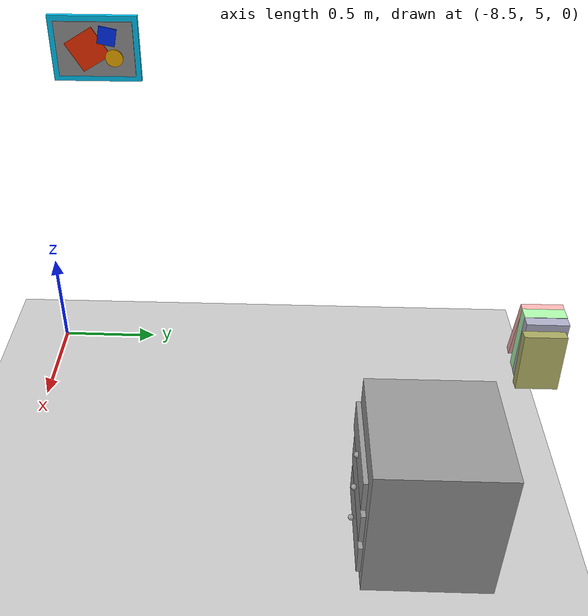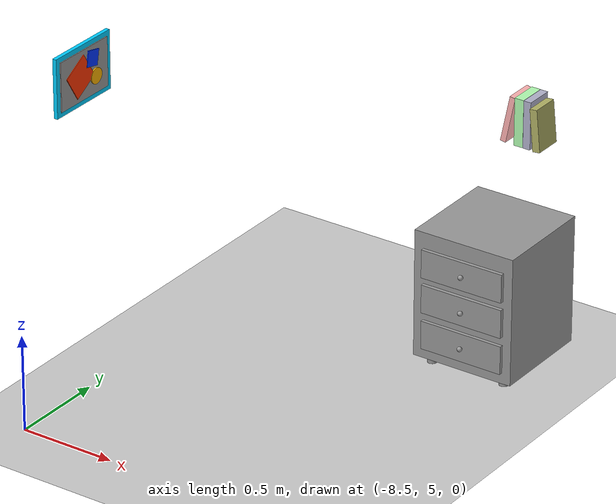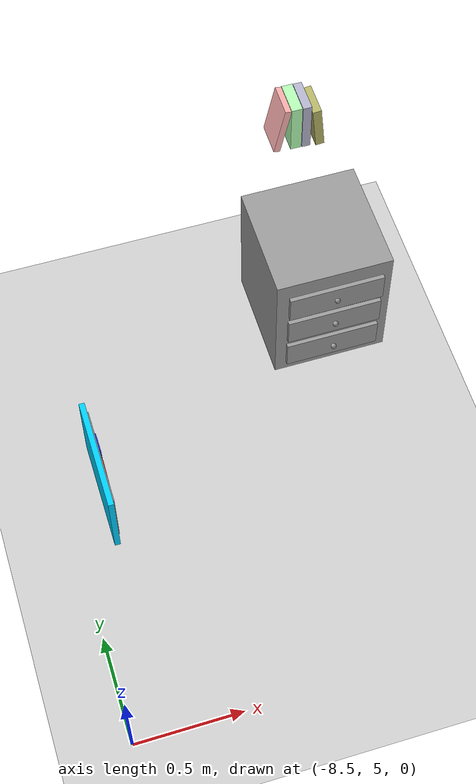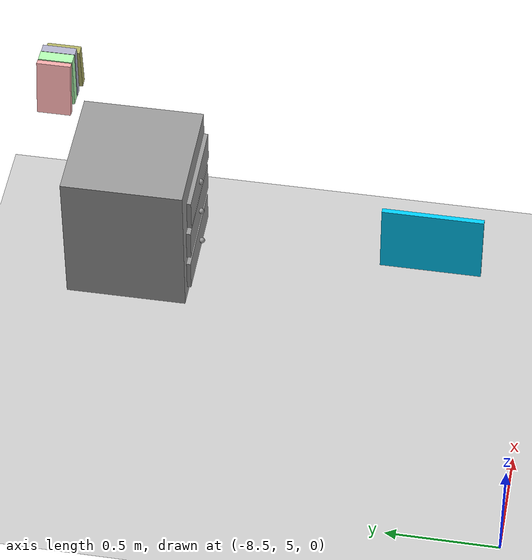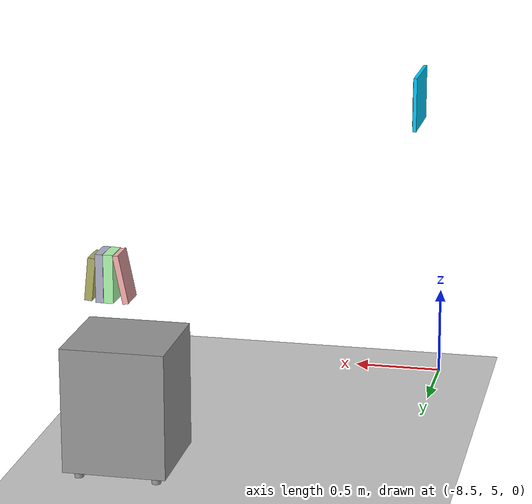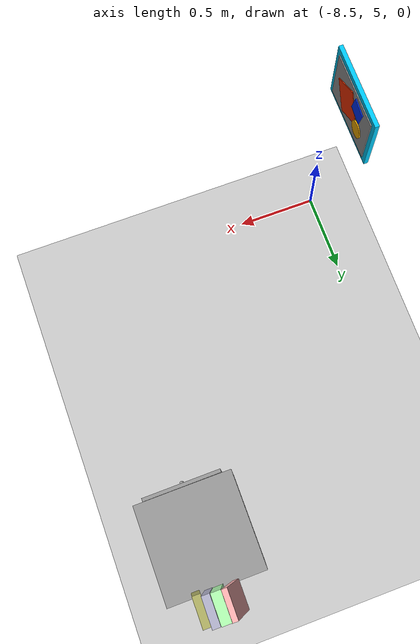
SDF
<sdf version="1.7">
 <world name="default">
  <model name="ground_plane">
   <static>1</static>
   <link name="link">
    <collision name="collision">
     <geometry><plane><normal>0 0 1</normal><size>100 100</size></plane></geometry>
     <surface>
      <contact><collide_bitmask>65535</collide_bitmask></contact>
      <friction><ode><mu>100</mu><mu2>50</mu2></ode></friction>
     </surface>
    </collision>
    <visual name="visual">
     <cast_shadows>0</cast_shadows>
     <geometry><plane><normal>0 0 1</normal><size>100 100</size></plane></geometry>
     <material>
      <script><uri>file://media/materials/scripts/gazebo.material</uri><name>Gazebo/Grey</name></script>
     </material>
    </visual>
   </link>
  </model>
  <model name="my_drawer_v2">
   <link name="link">
    <inertial>
     <mass>1</mass>
     <inertia>
      <ixx>0.166667</ixx>
      <ixy>0</ixy>
      <ixz>0</ixz>
      <iyy>0.166667</iyy>
      <iyz>0</iyz>
      <izz>0.166667</izz>
     </inertia>
    </inertial>
    <pose>0 0 0.116299 0 -0 0</pose>
    <visual name="visual">
     <geometry><box><size>0.55 0.55 0.675</size></box></geometry>
     <material>
      <script><name>Gazebo/Grey</name><uri>file://media/materials/scripts/gazebo.material</uri></script>
      <shader type="pixel"><normal_map>__default__</normal_map></shader>
      <ambient>0.9 0.9 0.9 1</ambient>
      <diffuse>0.9 0.9 0.9 1</diffuse>
      <specular>0.01 0.01 0.01 1</specular>
      <emissive>0 0 0 1</emissive>
     </material>
     <pose>0 0 0.27 0 -0 0</pose>
    </visual>
    <collision name="collision">
     <pose>0 0 0.27 0 -0 0</pose>
     <geometry><box><size>0.55 0.55 0.675</size></box></geometry>
     <surface>
      <friction>
       <ode><mu>1</mu><mu2>1</mu2><fdir1>0 0 0</fdir1><slip1>0</slip1><slip2>0</slip2></ode>
       <torsional>
        <coefficient>1</coefficient>
        <patch_radius>0</patch_radius>
        <surface_radius>0</surface_radius>
        <use_patch_radius>1</use_patch_radius>
        <ode><slip>0</slip></ode>
       </torsional>
      </friction>
      <bounce><restitution_coefficient>0</restitution_coefficient><threshold>1e+06</threshold></bounce>
      <contact>
       <collide_without_contact>0</collide_without_contact>
       <collide_without_contact_bitmask>1</collide_without_contact_bitmask>
       <collide_bitmask>1</collide_bitmask>
       <ode>
        <soft_cfm>0</soft_cfm>
        <soft_erp>0.2</soft_erp>
        <kp>1e+13</kp>
        <kd>1</kd>
        <max_vel>0.01</max_vel>
        <min_depth>0</min_depth>
       </ode>
       <bullet>
        <split_impulse>1</split_impulse>
        <split_impulse_penetration_threshold>-0.01</split_impulse_penetration_threshold>
        <soft_cfm>0</soft_cfm>
        <soft_erp>0.2</soft_erp>
        <kp>1e+13</kp>
        <kd>1</kd>
       </bullet>
      </contact>
     </surface>
    </collision>
   </link>
   <link name="link_0">
    <inertial>
     <mass>1</mass>
     <inertia><ixx>0.145833</ixx><ixy>0</ixy><ixz>0</ixz><iyy>0.145833</iyy><iyz>0</iyz><izz>0.125</izz></inertia>
    </inertial>
    <pose>0.2095 -0.203821 0.302524 0 -0 0</pose>
    <visual name="visual">
     <pose>0 0 -0.275 0 -0 0</pose>
     <geometry><cylinder><radius>0.025</radius><length>0.05</length></cylinder></geometry>
     <material>
      <lighting>1</lighting>
      <script><uri>file://media/materials/scripts/gazebo.material</uri><name>Gazebo/Grey</name></script>
      <shader type="pixel"><normal_map>__default__</normal_map></shader>
      <ambient>0.7 0.7 0.7 1</ambient>
      <diffuse>0.7 0.7 0.7 1</diffuse>
      <specular>0.01 0.01 0.01 1</specular>
      <emissive>0 0 0 1</emissive>
     </material>
    </visual>
    <collision name="collision">
     <pose>0 0 -0.275 0 -0 0</pose>
     <geometry><cylinder><radius>0.025</radius><length>0.05</length></cylinder></geometry>
     <surface>
      <friction>
       <ode><mu>1</mu><mu2>1</mu2><fdir1>0 0 0</fdir1><slip1>0</slip1><slip2>0</slip2></ode>
       <torsional>
        <coefficient>1</coefficient>
        <patch_radius>0</patch_radius>
        <surface_radius>0</surface_radius>
        <use_patch_radius>1</use_patch_radius>
        <ode><slip>0</slip></ode>
       </torsional>
      </friction>
      <bounce><restitution_coefficient>0</restitution_coefficient><threshold>1e+06</threshold></bounce>
      <contact>
       <collide_without_contact>0</collide_without_contact>
       <collide_without_contact_bitmask>1</collide_without_contact_bitmask>
       <collide_bitmask>1</collide_bitmask>
       <ode>
        <soft_cfm>0</soft_cfm>
        <soft_erp>0.2</soft_erp>
        <kp>1e+13</kp>
        <kd>1</kd>
        <max_vel>0.01</max_vel>
        <min_depth>0</min_depth>
       </ode>
       <bullet>
        <split_impulse>1</split_impulse>
        <split_impulse_penetration_threshold>-0.01</split_impulse_penetration_threshold>
        <soft_cfm>0</soft_cfm>
        <soft_erp>0.2</soft_erp>
        <kp>1e+13</kp>
        <kd>1</kd>
       </bullet>
      </contact>
     </surface>
    </collision>
   </link>
   <link name="link_0_0_clone">
    <inertial>
     <mass>1</mass>
     <inertia>
      <ixx>0.166667</ixx>
      <ixy>0</ixy>
      <ixz>0</ixz>
      <iyy>0.166667</iyy>
      <iyz>0</iyz>
      <izz>0.166667</izz>
     </inertia>
    </inertial>
    <pose>-0.003378 0.283932 0.180993 0 -0 0</pose>
    <visual name="visual">
     <geometry><box><size>0.45 0.02 0.15</size></box></geometry>
     <material>
      <lighting>1</lighting>
      <script><uri>file://media/materials/scripts/gazebo.material</uri><name>Gazebo/Grey</name></script>
      <shader type="pixel"><normal_map>__default__</normal_map></shader>
      <ambient>0.9 0.9 0.9 1</ambient>
      <diffuse>0.9 0.9 0.9 1</diffuse>
      <specular>0.01 0.01 0.01 1</specular>
      <emissive>0 0 0 1</emissive>
     </material>
    </visual>
    <collision name="collision">
     <geometry><box><size>0.45 0.02 0.15</size></box></geometry>
     <surface>
      <friction>
       <ode><mu>1</mu><mu2>1</mu2><fdir1>0 0 0</fdir1><slip1>0</slip1><slip2>0</slip2></ode>
       <torsional>
        <coefficient>1</coefficient>
        <patch_radius>0</patch_radius>
        <surface_radius>0</surface_radius>
        <use_patch_radius>1</use_patch_radius>
        <ode><slip>0</slip></ode>
       </torsional>
      </friction>
      <bounce><restitution_coefficient>0</restitution_coefficient><threshold>1e+06</threshold></bounce>
      <contact>
       <collide_without_contact>0</collide_without_contact>
       <collide_without_contact_bitmask>1</collide_without_contact_bitmask>
       <collide_bitmask>1</collide_bitmask>
       <ode>
        <soft_cfm>0</soft_cfm>
        <soft_erp>0.2</soft_erp>
        <kp>1e+13</kp>
        <kd>1</kd>
        <max_vel>0.01</max_vel>
        <min_depth>0</min_depth>
       </ode>
       <bullet>
        <split_impulse>1</split_impulse>
        <split_impulse_penetration_threshold>-0.01</split_impulse_penetration_threshold>
        <soft_cfm>0</soft_cfm>
        <soft_erp>0.2</soft_erp>
        <kp>1e+13</kp>
        <kd>1</kd>
       </bullet>
      </contact>
     </surface>
    </collision>
   </link>
   <link name="link_0_0_clone_clone">
    <inertial>
     <mass>1</mass>
     <inertia>
      <ixx>0.166667</ixx>
      <ixy>0</ixy>
      <ixz>0</ixz>
      <iyy>0.166667</iyy>
      <iyz>0</iyz>
      <izz>0.166667</izz>
     </inertia>
    </inertial>
    <pose>-0.004239 0.28732 0.377607 0 -0 0</pose>
    <visual name="visual">
     <geometry><box><size>0.45 0.02 0.15</size></box></geometry>
     <material>
      <lighting>1</lighting>
      <script><uri>file://media/materials/scripts/gazebo.material</uri><name>Gazebo/Grey</name></script>
      <shader type="pixel"><normal_map>__default__</normal_map></shader>
      <ambient>0.9 0.9 0.9 1</ambient>
      <diffuse>0.9 0.9 0.9 1</diffuse>
      <specular>0.01 0.01 0.01 1</specular>
      <emissive>0 0 0 1</emissive>
     </material>
    </visual>
    <collision name="collision">
     <geometry><box><size>0.45 0.02 0.15</size></box></geometry>
     <surface>
      <friction>
       <ode><mu>1</mu><mu2>1</mu2><fdir1>0 0 0</fdir1><slip1>0</slip1><slip2>0</slip2></ode>
       <torsional>
        <coefficient>1</coefficient>
        <patch_radius>0</patch_radius>
        <surface_radius>0</surface_radius>
        <use_patch_radius>1</use_patch_radius>
        <ode><slip>0</slip></ode>
       </torsional>
      </friction>
      <bounce><restitution_coefficient>0</restitution_coefficient><threshold>1e+06</threshold></bounce>
      <contact>
       <collide_without_contact>0</collide_without_contact>
       <collide_without_contact_bitmask>1</collide_without_contact_bitmask>
       <collide_bitmask>1</collide_bitmask>
       <ode>
        <soft_cfm>0</soft_cfm>
        <soft_erp>0.2</soft_erp>
        <kp>1e+13</kp>
        <kd>1</kd>
        <max_vel>0.01</max_vel>
        <min_depth>0</min_depth>
       </ode>
       <bullet>
        <split_impulse>1</split_impulse>
        <split_impulse_penetration_threshold>-0.01</split_impulse_penetration_threshold>
        <soft_cfm>0</soft_cfm>
        <soft_erp>0.2</soft_erp>
        <kp>1e+13</kp>
        <kd>1</kd>
       </bullet>
      </contact>
     </surface>
    </collision>
   </link>
   <link name="link_0_0_clone_clone_clone">
    <inertial>
     <mass>1</mass>
     <inertia>
      <ixx>0.166667</ixx>
      <ixy>0</ixy>
      <ixz>0</ixz>
      <iyy>0.166667</iyy>
      <iyz>0</iyz>
      <izz>0.166667</izz>
     </inertia>
    </inertial>
    <pose>-0.005805 0.292346 0.569265 0 0 -3.13872</pose>
    <visual name="visual">
     <geometry><box><size>0.45 0.02 0.15</size></box></geometry>
     <material>
      <lighting>1</lighting>
      <script><uri>file://media/materials/scripts/gazebo.material</uri><name>Gazebo/Grey</name></script>
      <shader type="pixel"><normal_map>__default__</normal_map></shader>
      <ambient>0.9 0.9 0.9 1</ambient>
      <diffuse>0.9 0.9 0.9 1</diffuse>
      <specular>0.01 0.01 0.01 1</specular>
      <emissive>0 0 0 1</emissive>
     </material>
    </visual>
    <collision name="collision">
     <geometry><box><size>0.45 0.02 0.15</size></box></geometry>
     <surface>
      <friction>
       <ode><mu>1</mu><mu2>1</mu2><fdir1>0 0 0</fdir1><slip1>0</slip1><slip2>0</slip2></ode>
       <torsional>
        <coefficient>1</coefficient>
        <patch_radius>0</patch_radius>
        <surface_radius>0</surface_radius>
        <use_patch_radius>1</use_patch_radius>
        <ode><slip>0</slip></ode>
       </torsional>
      </friction>
      <bounce><restitution_coefficient>0</restitution_coefficient><threshold>1e+06</threshold></bounce>
      <contact>
       <collide_without_contact>0</collide_without_contact>
       <collide_without_contact_bitmask>1</collide_without_contact_bitmask>
       <collide_bitmask>1</collide_bitmask>
       <ode>
        <soft_cfm>0</soft_cfm>
        <soft_erp>0.2</soft_erp>
        <kp>1e+13</kp>
        <kd>1</kd>
        <max_vel>0.01</max_vel>
        <min_depth>0</min_depth>
       </ode>
       <bullet>
        <split_impulse>1</split_impulse>
        <split_impulse_penetration_threshold>-0.01</split_impulse_penetration_threshold>
        <soft_cfm>0</soft_cfm>
        <soft_erp>0.2</soft_erp>
        <kp>1e+13</kp>
        <kd>1</kd>
       </bullet>
      </contact>
     </surface>
    </collision>
   </link>
   <link name="link_0_clone">
    <inertial>
     <mass>1</mass>
     <inertia><ixx>0.145833</ixx><ixy>0</ixy><ixz>0</ixz><iyy>0.145833</iyy><iyz>0</iyz><izz>0.125</izz></inertia>
    </inertial>
    <pose>-0.20661 -0.201979 0.303229 0 -0 0</pose>
    <visual name="visual">
     <pose>0 0 -0.275 0 -0 0</pose>
     <geometry><cylinder><radius>0.025</radius><length>0.05</length></cylinder></geometry>
     <material>
      <lighting>1</lighting>
      <script><uri>file://media/materials/scripts/gazebo.material</uri><name>Gazebo/Grey</name></script>
      <shader type="pixel"><normal_map>__default__</normal_map></shader>
      <ambient>0.8 0.8 0.8 1</ambient>
      <diffuse>0.8 0.8 0.8 1</diffuse>
      <specular>0.01 0.01 0.01 1</specular>
      <emissive>0 0 0 1</emissive>
     </material>
    </visual>
    <collision name="collision">
     <pose>0 0 -0.275 0 -0 0</pose>
     <geometry><cylinder><radius>0.025</radius><length>0.05</length></cylinder></geometry>
     <surface>
      <friction>
       <ode><mu>1</mu><mu2>1</mu2><fdir1>0 0 0</fdir1><slip1>0</slip1><slip2>0</slip2></ode>
       <torsional>
        <coefficient>1</coefficient>
        <patch_radius>0</patch_radius>
        <surface_radius>0</surface_radius>
        <use_patch_radius>1</use_patch_radius>
        <ode><slip>0</slip></ode>
       </torsional>
      </friction>
      <bounce><restitution_coefficient>0</restitution_coefficient><threshold>1e+06</threshold></bounce>
      <contact>
       <collide_without_contact>0</collide_without_contact>
       <collide_without_contact_bitmask>1</collide_without_contact_bitmask>
       <collide_bitmask>1</collide_bitmask>
       <ode>
        <soft_cfm>0</soft_cfm>
        <soft_erp>0.2</soft_erp>
        <kp>1e+13</kp>
        <kd>1</kd>
        <max_vel>0.01</max_vel>
        <min_depth>0</min_depth>
       </ode>
       <bullet>
        <split_impulse>1</split_impulse>
        <split_impulse_penetration_threshold>-0.01</split_impulse_penetration_threshold>
        <soft_cfm>0</soft_cfm>
        <soft_erp>0.2</soft_erp>
        <kp>1e+13</kp>
        <kd>1</kd>
       </bullet>
      </contact>
     </surface>
    </collision>
   </link>
   <link name="link_0_clone_0">
    <inertial>
     <mass>1</mass>
     <inertia><ixx>0.145833</ixx><ixy>0</ixy><ixz>0</ixz><iyy>0.145833</iyy><iyz>0</iyz><izz>0.125</izz></inertia>
    </inertial>
    <pose>0.205481 0.211972 0.302524 0 -0 0</pose>
    <visual name="visual">
     <pose>0 0 -0.275 0 -0 0</pose>
     <geometry><cylinder><radius>0.025</radius><length>0.05</length></cylinder></geometry>
     <material>
      <lighting>1</lighting>
      <script><uri>file://media/materials/scripts/gazebo.material</uri><name>Gazebo/Grey</name></script>
      <shader type="pixel"><normal_map>__default__</normal_map></shader>
      <ambient>0.7 0.7 0.7 1</ambient>
      <diffuse>0.7 0.7 0.7 1</diffuse>
      <specular>0.01 0.01 0.01 1</specular>
      <emissive>0 0 0 1</emissive>
     </material>
    </visual>
    <collision name="collision">
     <pose>0 0 -0.275 0 -0 0</pose>
     <geometry><cylinder><radius>0.025</radius><length>0.05</length></cylinder></geometry>
     <surface>
      <friction>
       <ode><mu>1</mu><mu2>1</mu2><fdir1>0 0 0</fdir1><slip1>0</slip1><slip2>0</slip2></ode>
       <torsional>
        <coefficient>1</coefficient>
        <patch_radius>0</patch_radius>
        <surface_radius>0</surface_radius>
        <use_patch_radius>1</use_patch_radius>
        <ode><slip>0</slip></ode>
       </torsional>
      </friction>
      <bounce><restitution_coefficient>0</restitution_coefficient><threshold>1e+06</threshold></bounce>
      <contact>
       <collide_without_contact>0</collide_without_contact>
       <collide_without_contact_bitmask>1</collide_without_contact_bitmask>
       <collide_bitmask>1</collide_bitmask>
       <ode>
        <soft_cfm>0</soft_cfm>
        <soft_erp>0.2</soft_erp>
        <kp>1e+13</kp>
        <kd>1</kd>
        <max_vel>0.01</max_vel>
        <min_depth>0</min_depth>
       </ode>
       <bullet>
        <split_impulse>1</split_impulse>
        <split_impulse_penetration_threshold>-0.01</split_impulse_penetration_threshold>
        <soft_cfm>0</soft_cfm>
        <soft_erp>0.2</soft_erp>
        <kp>1e+13</kp>
        <kd>1</kd>
       </bullet>
      </contact>
     </surface>
    </collision>
   </link>
   <link name="link_0_clone_0_clone">
    <inertial>
     <mass>1</mass>
     <inertia><ixx>0.145833</ixx><ixy>0</ixy><ixz>0</ixz><iyy>0.145833</iyy><iyz>0</iyz><izz>0.125</izz></inertia>
    </inertial>
    <pose>-0.197514 0.204937 0.302524 0 -0 0</pose>
    <visual name="visual">
     <pose>0 0 -0.275 0 -0 0</pose>
     <geometry><cylinder><radius>0.025</radius><length>0.05</length></cylinder></geometry>
     <material>
      <lighting>1</lighting>
      <script><uri>file://media/materials/scripts/gazebo.material</uri><name>Gazebo/Grey</name></script>
      <shader type="pixel"><normal_map>__default__</normal_map></shader>
      <ambient>0.7 0.7 0.7 1</ambient>
      <diffuse>0.7 0.7 0.7 1</diffuse>
      <specular>0.01 0.01 0.01 1</specular>
      <emissive>0 0 0 1</emissive>
     </material>
    </visual>
    <collision name="collision">
     <pose>0 0 -0.275 0 -0 0</pose>
     <geometry><cylinder><radius>0.025</radius><length>0.05</length></cylinder></geometry>
     <surface>
      <friction>
       <ode><mu>1</mu><mu2>1</mu2><fdir1>0 0 0</fdir1><slip1>0</slip1><slip2>0</slip2></ode>
       <torsional>
        <coefficient>1</coefficient>
        <patch_radius>0</patch_radius>
        <surface_radius>0</surface_radius>
        <use_patch_radius>1</use_patch_radius>
        <ode><slip>0</slip></ode>
       </torsional>
      </friction>
      <bounce><restitution_coefficient>0</restitution_coefficient><threshold>1e+06</threshold></bounce>
      <contact>
       <collide_without_contact>0</collide_without_contact>
       <collide_without_contact_bitmask>1</collide_without_contact_bitmask>
       <collide_bitmask>1</collide_bitmask>
       <ode>
        <soft_cfm>0</soft_cfm>
        <soft_erp>0.2</soft_erp>
        <kp>1e+13</kp>
        <kd>1</kd>
        <max_vel>0.01</max_vel>
        <min_depth>0</min_depth>
       </ode>
       <bullet>
        <split_impulse>1</split_impulse>
        <split_impulse_penetration_threshold>-0.01</split_impulse_penetration_threshold>
        <soft_cfm>0</soft_cfm>
        <soft_erp>0.2</soft_erp>
        <kp>1e+13</kp>
        <kd>1</kd>
       </bullet>
      </contact>
     </surface>
    </collision>
   </link>
   <link name="link_1">
    <inertial>
     <mass>1</mass>
     <inertia><ixx>0.1</ixx><ixy>0</ixy><ixz>0</ixz><iyy>0.1</iyy><iyz>0</iyz><izz>0.1</izz></inertia>
    </inertial>
    <pose>-0.007427 0.306598 0.372378 0 -0 0</pose>
    <visual name="visual">
     <geometry><sphere><radius>0.013</radius></sphere></geometry>
     <material>
      <lighting>1</lighting>
      <script><uri>file://media/materials/scripts/gazebo.material</uri><name>Gazebo/Grey</name></script>
      <shader type="pixel"><normal_map>__default__</normal_map></shader>
      <ambient>0.2 0.2 0.2 1</ambient>
      <diffuse>0.3 0.3 0.3 1</diffuse>
      <specular>0.01 0.01 0.01 1</specular>
      <emissive>0 0 0 1</emissive>
     </material>
    </visual>
    <collision name="collision">
     <geometry><sphere><radius>0.013</radius></sphere></geometry>
     <surface>
      <friction>
       <ode><mu>1</mu><mu2>1</mu2><fdir1>0 0 0</fdir1><slip1>0</slip1><slip2>0</slip2></ode>
       <torsional>
        <coefficient>1</coefficient>
        <patch_radius>0</patch_radius>
        <surface_radius>0</surface_radius>
        <use_patch_radius>1</use_patch_radius>
        <ode><slip>0</slip></ode>
       </torsional>
      </friction>
      <bounce><restitution_coefficient>0</restitution_coefficient><threshold>1e+06</threshold></bounce>
      <contact>
       <collide_without_contact>0</collide_without_contact>
       <collide_without_contact_bitmask>1</collide_without_contact_bitmask>
       <collide_bitmask>1</collide_bitmask>
       <ode>
        <soft_cfm>0</soft_cfm>
        <soft_erp>0.2</soft_erp>
        <kp>1e+13</kp>
        <kd>1</kd>
        <max_vel>0.01</max_vel>
        <min_depth>0</min_depth>
       </ode>
       <bullet>
        <split_impulse>1</split_impulse>
        <split_impulse_penetration_threshold>-0.01</split_impulse_penetration_threshold>
        <soft_cfm>0</soft_cfm>
        <soft_erp>0.2</soft_erp>
        <kp>1e+13</kp>
        <kd>1</kd>
       </bullet>
      </contact>
     </surface>
    </collision>
   </link>
   <link name="link_1_clone">
    <inertial>
     <mass>1</mass>
     <inertia><ixx>0.1</ixx><ixy>0</ixy><ixz>0</ixz><iyy>0.1</iyy><iyz>0</iyz><izz>0.1</izz></inertia>
    </inertial>
    <pose>-0.007411 0.306159 0.179254 0 -0 0</pose>
    <visual name="visual">
     <geometry><sphere><radius>0.013</radius></sphere></geometry>
     <material>
      <lighting>1</lighting>
      <script><uri>file://media/materials/scripts/gazebo.material</uri><name>Gazebo/Grey</name></script>
      <shader type="pixel"><normal_map>__default__</normal_map></shader>
      <ambient>0.2 0.2 0.2 1</ambient>
      <diffuse>0.3 0.3 0.3 1</diffuse>
      <specular>0.01 0.01 0.01 1</specular>
      <emissive>0 0 0 1</emissive>
     </material>
    </visual>
    <collision name="collision">
     <geometry><sphere><radius>0.013</radius></sphere></geometry>
     <surface>
      <friction>
       <ode><mu>1</mu><mu2>1</mu2><fdir1>0 0 0</fdir1><slip1>0</slip1><slip2>0</slip2></ode>
       <torsional>
        <coefficient>1</coefficient>
        <patch_radius>0</patch_radius>
        <surface_radius>0</surface_radius>
        <use_patch_radius>1</use_patch_radius>
        <ode><slip>0</slip></ode>
       </torsional>
      </friction>
      <bounce><restitution_coefficient>0</restitution_coefficient><threshold>1e+06</threshold></bounce>
      <contact>
       <collide_without_contact>0</collide_without_contact>
       <collide_without_contact_bitmask>1</collide_without_contact_bitmask>
       <collide_bitmask>1</collide_bitmask>
       <ode>
        <soft_cfm>0</soft_cfm>
        <soft_erp>0.2</soft_erp>
        <kp>1e+13</kp>
        <kd>1</kd>
        <max_vel>0.01</max_vel>
        <min_depth>0</min_depth>
       </ode>
       <bullet>
        <split_impulse>1</split_impulse>
        <split_impulse_penetration_threshold>-0.01</split_impulse_penetration_threshold>
        <soft_cfm>0</soft_cfm>
        <soft_erp>0.2</soft_erp>
        <kp>1e+13</kp>
        <kd>1</kd>
       </bullet>
      </contact>
     </surface>
    </collision>
   </link>
   <link name="link_1_clone_clone">
    <inertial>
     <mass>1</mass>
     <inertia><ixx>0.1</ixx><ixy>0</ixy><ixz>0</ixz><iyy>0.1</iyy><iyz>0</iyz><izz>0.1</izz></inertia>
    </inertial>
    <pose>-0.006412 0.30676 0.563852 0 0 -3.13872</pose>
    <visual name="visual">
     <geometry><sphere><radius>0.013</radius></sphere></geometry>
     <material>
      <lighting>1</lighting>
      <script><uri>file://media/materials/scripts/gazebo.material</uri><name>Gazebo/Grey</name></script>
      <shader type="pixel"><normal_map>__default__</normal_map></shader>
      <ambient>0.2 0.2 0.2 1</ambient>
      <diffuse>0.3 0.3 0.3 1</diffuse>
      <specular>0.01 0.01 0.01 1</specular>
      <emissive>0 0 0 1</emissive>
     </material>
    </visual>
    <collision name="collision">
     <geometry><sphere><radius>0.013</radius></sphere></geometry>
     <surface>
      <friction>
       <ode><mu>1</mu><mu2>1</mu2><fdir1>0 0 0</fdir1><slip1>0</slip1><slip2>0</slip2></ode>
       <torsional>
        <coefficient>1</coefficient>
        <patch_radius>0</patch_radius>
        <surface_radius>0</surface_radius>
        <use_patch_radius>1</use_patch_radius>
        <ode><slip>0</slip></ode>
       </torsional>
      </friction>
      <bounce><restitution_coefficient>0</restitution_coefficient><threshold>1e+06</threshold></bounce>
      <contact>
       <collide_without_contact>0</collide_without_contact>
       <collide_without_contact_bitmask>1</collide_without_contact_bitmask>
       <collide_bitmask>1</collide_bitmask>
       <ode>
        <soft_cfm>0</soft_cfm>
        <soft_erp>0.2</soft_erp>
        <kp>1e+13</kp>
        <kd>1</kd>
        <max_vel>0.01</max_vel>
        <min_depth>0</min_depth>
       </ode>
       <bullet>
        <split_impulse>1</split_impulse>
        <split_impulse_penetration_threshold>-0.01</split_impulse_penetration_threshold>
        <soft_cfm>0</soft_cfm>
        <soft_erp>0.2</soft_erp>
        <kp>1e+13</kp>
        <kd>1</kd>
       </bullet>
      </contact>
     </surface>
    </collision>
   </link>
   <static>1</static>
   <pose>-7.0932 6.85181 0 0 0 -3.13883</pose>
  </model>
  <model name="my_frame">
   <link name="link">
    <inertial>
     <mass>1</mass>
     <inertia>
      <ixx>0.166667</ixx>
      <ixy>0</ixy>
      <ixz>0</ixz>
      <iyy>0.166667</iyy>
      <iyz>0</iyz>
      <izz>0.166667</izz>
     </inertia>
    </inertial>
    <gravity>0</gravity>
    <visual name="visual">
     <geometry><box><size>0.02 0.4 0.3</size></box></geometry>
     <material>
      <script><name>Gazebo/Grey</name><uri>file://media/materials/scripts/gazebo.material</uri></script>
      <shader type="pixel"><normal_map>__default__</normal_map></shader>
      <ambient>0 0.81 1 1</ambient>
      <diffuse>0.7 0.7 0.7 1</diffuse>
      <specular>0.01 0.01 0.01 1</specular>
      <emissive>0 0 0 1</emissive>
     </material>
    </visual>
    <collision name="collision">
     <geometry><box><size>0.02 0.4 0.3</size></box></geometry>
     <surface>
      <friction>
       <ode><mu>1</mu><mu2>1</mu2><fdir1>0 0 0</fdir1><slip1>0</slip1><slip2>0</slip2></ode>
       <torsional>
        <coefficient>1</coefficient>
        <patch_radius>0</patch_radius>
        <surface_radius>0</surface_radius>
        <use_patch_radius>1</use_patch_radius>
        <ode><slip>0</slip></ode>
       </torsional>
      </friction>
      <bounce><restitution_coefficient>0</restitution_coefficient><threshold>1e+06</threshold></bounce>
      <contact>
       <collide_without_contact>0</collide_without_contact>
       <collide_without_contact_bitmask>1</collide_without_contact_bitmask>
       <collide_bitmask>1</collide_bitmask>
       <ode>
        <soft_cfm>0</soft_cfm>
        <soft_erp>0.2</soft_erp>
        <kp>1e+13</kp>
        <kd>1</kd>
        <max_vel>0.01</max_vel>
        <min_depth>0</min_depth>
       </ode>
       <bullet>
        <split_impulse>1</split_impulse>
        <split_impulse_penetration_threshold>-0.01</split_impulse_penetration_threshold>
        <soft_cfm>0</soft_cfm>
        <soft_erp>0.2</soft_erp>
        <kp>1e+13</kp>
        <kd>1</kd>
       </bullet>
      </contact>
     </surface>
    </collision>
   </link>
   <link name="link_2">
    <inertial>
     <mass>1</mass>
     <inertia><ixx>0.145833</ixx><ixy>0</ixy><ixz>0</ixz><iyy>0.145833</iyy><iyz>0</iyz><izz>0.125</izz></inertia>
    </inertial>
    <pose>0.015889 0.084711 -0.037956 0 -0 0</pose>
    <gravity>0</gravity>
    <visual name="visual">
     <pose>0 0 0 0 1.5707 0</pose>
     <geometry><cylinder><radius>0.04</radius><length>0.01</length></cylinder></geometry>
     <material>
      <lighting>1</lighting>
      <script><uri>file://media/materials/scripts/gazebo.material</uri><name>Gazebo/Grey</name></script>
      <shader type="pixel"><normal_map>__default__</normal_map></shader>
      <ambient>0.99 0.7 0 1</ambient>
      <diffuse>0.7 0.7 0.7 1</diffuse>
      <specular>0.01 0.01 0.01 1</specular>
      <emissive>0 0 0 1</emissive>
     </material>
    </visual>
    <collision name="collision">
     <pose>0 0 0 0 1.5707 0</pose>
     <geometry><cylinder><radius>0.04</radius><length>0.01</length></cylinder></geometry>
     <surface>
      <friction>
       <ode><mu>1</mu><mu2>1</mu2><fdir1>0 0 0</fdir1><slip1>0</slip1><slip2>0</slip2></ode>
       <torsional>
        <coefficient>1</coefficient>
        <patch_radius>0</patch_radius>
        <surface_radius>0</surface_radius>
        <use_patch_radius>1</use_patch_radius>
        <ode><slip>0</slip></ode>
       </torsional>
      </friction>
      <bounce><restitution_coefficient>0</restitution_coefficient><threshold>1e+06</threshold></bounce>
      <contact>
       <collide_without_contact>0</collide_without_contact>
       <collide_without_contact_bitmask>1</collide_without_contact_bitmask>
       <collide_bitmask>1</collide_bitmask>
       <ode>
        <soft_cfm>0</soft_cfm>
        <soft_erp>0.2</soft_erp>
        <kp>1e+13</kp>
        <kd>1</kd>
        <max_vel>0.01</max_vel>
        <min_depth>0</min_depth>
       </ode>
       <bullet>
        <split_impulse>1</split_impulse>
        <split_impulse_penetration_threshold>-0.01</split_impulse_penetration_threshold>
        <soft_cfm>0</soft_cfm>
        <soft_erp>0.2</soft_erp>
        <kp>1e+13</kp>
        <kd>1</kd>
       </bullet>
      </contact>
     </surface>
    </collision>
   </link>
   <link name="link_3">
    <inertial>
     <mass>1</mass>
     <inertia>
      <ixx>0.166667</ixx>
      <ixy>0</ixy>
      <ixz>0</ixz>
      <iyy>0.166667</iyy>
      <iyz>0</iyz>
      <izz>0.166667</izz>
     </inertia>
    </inertial>
    <pose>0.013898 -0.032005 0 0 -0 0</pose>
    <gravity>0</gravity>
    <visual name="visual">
     <pose>0 0 0 0.54 -0 0</pose>
     <geometry><box><size>0.01 0.15 0.15</size></box></geometry>
     <material>
      <lighting>1</lighting>
      <script><uri>file://media/materials/scripts/gazebo.material</uri><name>Gazebo/Grey</name></script>
      <shader type="pixel"><normal_map>__default__</normal_map></shader>
      <ambient>1 0.2 0 1</ambient>
      <diffuse>0.7 0.7 0.7 1</diffuse>
      <specular>0.01 0.01 0.01 1</specular>
      <emissive>0 0 0 1</emissive>
     </material>
    </visual>
    <collision name="collision">
     <pose>0 0 0 0.54 -0 0</pose>
     <geometry><box><size>0.01 0.15 0.15</size></box></geometry>
     <surface>
      <friction>
       <ode><mu>1</mu><mu2>1</mu2><fdir1>0 0 0</fdir1><slip1>0</slip1><slip2>0</slip2></ode>
       <torsional>
        <coefficient>1</coefficient>
        <patch_radius>0</patch_radius>
        <surface_radius>0</surface_radius>
        <use_patch_radius>1</use_patch_radius>
        <ode><slip>0</slip></ode>
       </torsional>
      </friction>
      <bounce><restitution_coefficient>0</restitution_coefficient><threshold>1e+06</threshold></bounce>
      <contact>
       <collide_without_contact>0</collide_without_contact>
       <collide_without_contact_bitmask>1</collide_without_contact_bitmask>
       <collide_bitmask>1</collide_bitmask>
       <ode>
        <soft_cfm>0</soft_cfm>
        <soft_erp>0.2</soft_erp>
        <kp>1e+13</kp>
        <kd>1</kd>
        <max_vel>0.01</max_vel>
        <min_depth>0</min_depth>
       </ode>
       <bullet>
        <split_impulse>1</split_impulse>
        <split_impulse_penetration_threshold>-0.01</split_impulse_penetration_threshold>
        <soft_cfm>0</soft_cfm>
        <soft_erp>0.2</soft_erp>
        <kp>1e+13</kp>
        <kd>1</kd>
       </bullet>
      </contact>
     </surface>
    </collision>
   </link>
   <link name="link_3_clone">
    <inertial>
     <mass>1</mass>
     <inertia>
      <ixx>0.166667</ixx>
      <ixy>0</ixy>
      <ixz>0</ixz>
      <iyy>0.166667</iyy>
      <iyz>0</iyz>
      <izz>0.166667</izz>
     </inertia>
    </inertial>
    <pose>0.015334 0.059714 0.061338 0 -0 0</pose>
    <gravity>0</gravity>
    <visual name="visual">
     <pose>0 0 0 -0.2 0 0</pose>
     <geometry><box><size>0.01 0.08 0.08</size></box></geometry>
     <material>
      <lighting>1</lighting>
      <script><uri>file://media/materials/scripts/gazebo.material</uri><name>Gazebo/Grey</name></script>
      <shader type="pixel"><normal_map>__default__</normal_map></shader>
      <ambient>0 0.2 1 1</ambient>
      <diffuse>0.7 0.7 0.7 1</diffuse>
      <specular>0.01 0.01 0.01 1</specular>
      <emissive>0 0 0 1</emissive>
     </material>
    </visual>
    <collision name="collision">
     <pose>0 0 0 -0.2 0 0</pose>
     <geometry><box><size>0.01 0.08 0.08</size></box></geometry>
     <surface>
      <friction>
       <ode><mu>1</mu><mu2>1</mu2><fdir1>0 0 0</fdir1><slip1>0</slip1><slip2>0</slip2></ode>
       <torsional>
        <coefficient>1</coefficient>
        <patch_radius>0</patch_radius>
        <surface_radius>0</surface_radius>
        <use_patch_radius>1</use_patch_radius>
        <ode><slip>0</slip></ode>
       </torsional>
      </friction>
      <bounce><restitution_coefficient>0</restitution_coefficient><threshold>1e+06</threshold></bounce>
      <contact>
       <collide_without_contact>0</collide_without_contact>
       <collide_without_contact_bitmask>1</collide_without_contact_bitmask>
       <collide_bitmask>1</collide_bitmask>
       <ode>
        <soft_cfm>0</soft_cfm>
        <soft_erp>0.2</soft_erp>
        <kp>1e+13</kp>
        <kd>1</kd>
        <max_vel>0.01</max_vel>
        <min_depth>0</min_depth>
       </ode>
       <bullet>
        <split_impulse>1</split_impulse>
        <split_impulse_penetration_threshold>-0.01</split_impulse_penetration_threshold>
        <soft_cfm>0</soft_cfm>
        <soft_erp>0.2</soft_erp>
        <kp>1e+13</kp>
        <kd>1</kd>
       </bullet>
      </contact>
     </surface>
    </collision>
   </link>
   <link name="link_clone">
    <inertial>
     <mass>1</mass>
     <inertia>
      <ixx>0.166667</ixx>
      <ixy>0</ixy>
      <ixz>0</ixz>
      <iyy>0.166667</iyy>
      <iyz>0</iyz>
      <izz>0.166667</izz>
     </inertia>
    </inertial>
    <pose>0.005108 0.000801 0 0 -0 0</pose>
    <gravity>0</gravity>
    <visual name="visual">
     <geometry><box><size>0.02 0.35 0.25</size></box></geometry>
     <material>
      <script><name>Gazebo/Grey</name><uri>file://media/materials/scripts/gazebo.material</uri></script>
      <shader type="pixel"><normal_map>__default__</normal_map></shader>
      <ambient>1 1 1 1</ambient>
      <diffuse>1 1 1 1</diffuse>
      <specular>0.01 0.01 0.01 1</specular>
      <emissive>0 0 0 1</emissive>
     </material>
    </visual>
    <collision name="collision">
     <geometry><box><size>0.02 0.4 0.3</size></box></geometry>
     <surface>
      <friction>
       <ode><mu>1</mu><mu2>1</mu2><fdir1>0 0 0</fdir1><slip1>0</slip1><slip2>0</slip2></ode>
       <torsional>
        <coefficient>1</coefficient>
        <patch_radius>0</patch_radius>
        <surface_radius>0</surface_radius>
        <use_patch_radius>1</use_patch_radius>
        <ode><slip>0</slip></ode>
       </torsional>
      </friction>
      <bounce><restitution_coefficient>0</restitution_coefficient><threshold>1e+06</threshold></bounce>
      <contact>
       <collide_without_contact>0</collide_without_contact>
       <collide_without_contact_bitmask>1</collide_without_contact_bitmask>
       <collide_bitmask>1</collide_bitmask>
       <ode>
        <soft_cfm>0</soft_cfm>
        <soft_erp>0.2</soft_erp>
        <kp>1e+13</kp>
        <kd>1</kd>
        <max_vel>0.01</max_vel>
        <min_depth>0</min_depth>
       </ode>
       <bullet>
        <split_impulse>1</split_impulse>
        <split_impulse_penetration_threshold>-0.01</split_impulse_penetration_threshold>
        <soft_cfm>0</soft_cfm>
        <soft_erp>0.2</soft_erp>
        <kp>1e+13</kp>
        <kd>1</kd>
       </bullet>
      </contact>
     </surface>
    </collision>
   </link>
   <static>1</static>
   <pose>-8.40036 5.37013 1.73152 0 -0 0</pose>
  </model>
  <model name="my_books">
   <link name="link">
    <inertial>
     <mass>1</mass>
     <inertia>
      <ixx>0.166667</ixx>
      <ixy>0</ixy>
      <ixz>0</ixz>
      <iyy>0.166667</iyy>
      <iyz>0</iyz>
      <izz>0.166667</izz>
     </inertia>
     <pose>0 0 1.15 0 -0 0</pose>
    </inertial>
    <pose>0.17974 0 -0.00246 0 -0 0</pose>
    <visual name="visual">
     <geometry><box><size>0.03 0.15 0.25</size></box></geometry>
     <material>
      <script><name>Gazebo/Grey</name><uri>file://media/materials/scripts/gazebo.material</uri></script>
      <shader type="pixel"><normal_map>__default__</normal_map></shader>
      <ambient>0.6 0.45 0.3 1</ambient>
      <diffuse>1 0.7 0.7 1</diffuse>
      <specular>0.01 0.01 0.01 1</specular>
      <emissive>0 0 0 1</emissive>
     </material>
     <pose>0 0 1.15 0 0.2 0</pose>
    </visual>
    <collision name="collision">
     <pose>0 0 1.15 0 0.2 0</pose>
     <geometry><box><size>0.03 0.15 0.25</size></box></geometry>
     <surface>
      <friction>
       <ode><mu>1</mu><mu2>1</mu2><fdir1>0 0 0</fdir1><slip1>0</slip1><slip2>0</slip2></ode>
       <torsional>
        <coefficient>1</coefficient>
        <patch_radius>0</patch_radius>
        <surface_radius>0</surface_radius>
        <use_patch_radius>1</use_patch_radius>
        <ode><slip>0</slip></ode>
       </torsional>
      </friction>
      <bounce><restitution_coefficient>0</restitution_coefficient><threshold>1e+06</threshold></bounce>
      <contact>
       <collide_without_contact>0</collide_without_contact>
       <collide_without_contact_bitmask>1</collide_without_contact_bitmask>
       <collide_bitmask>1</collide_bitmask>
       <ode>
        <soft_cfm>0</soft_cfm>
        <soft_erp>0.2</soft_erp>
        <kp>1e+13</kp>
        <kd>1</kd>
        <max_vel>0.01</max_vel>
        <min_depth>0</min_depth>
       </ode>
       <bullet>
        <split_impulse>1</split_impulse>
        <split_impulse_penetration_threshold>-0.01</split_impulse_penetration_threshold>
        <soft_cfm>0</soft_cfm>
        <soft_erp>0.2</soft_erp>
        <kp>1e+13</kp>
        <kd>1</kd>
       </bullet>
      </contact>
     </surface>
    </collision>
   </link>
   <link name="link_clone">
    <inertial>
     <mass>1</mass>
     <inertia>
      <ixx>0.166667</ixx>
      <ixy>0</ixy>
      <ixz>0</ixz>
      <iyy>0.166667</iyy>
      <iyz>0</iyz>
      <izz>0.166667</izz>
     </inertia>
     <pose>0 0 1.15 0 -0 0</pose>
    </inertial>
    <pose>0.243198 -0.002133 -0.00246 1e-05 -0 0</pose>
    <visual name="visual">
     <geometry><box><size>0.05 0.15 0.25</size></box></geometry>
     <material>
      <script><name>Gazebo/Grey</name><uri>file://media/materials/scripts/gazebo.material</uri></script>
      <shader type="pixel"><normal_map>__default__</normal_map></shader>
      <ambient>0.3 0.5 0.3 1</ambient>
      <diffuse>0.7 1 0.7 1</diffuse>
      <specular>0.01 0.01 0.01 1</specular>
      <emissive>0 0 0 1</emissive>
     </material>
     <pose>0 0 1.15 0 -0 0</pose>
    </visual>
    <collision name="collision">
     <pose>0 0 1.15 0 -0 0</pose>
     <geometry><box><size>0.05 0.15 0.25</size></box></geometry>
     <surface>
      <friction>
       <ode><mu>1</mu><mu2>1</mu2><fdir1>0 0 0</fdir1><slip1>0</slip1><slip2>0</slip2></ode>
       <torsional>
        <coefficient>1</coefficient>
        <patch_radius>0</patch_radius>
        <surface_radius>0</surface_radius>
        <use_patch_radius>1</use_patch_radius>
        <ode><slip>0</slip></ode>
       </torsional>
      </friction>
      <bounce><restitution_coefficient>0</restitution_coefficient><threshold>1e+06</threshold></bounce>
      <contact>
       <collide_without_contact>0</collide_without_contact>
       <collide_without_contact_bitmask>1</collide_without_contact_bitmask>
       <collide_bitmask>1</collide_bitmask>
       <ode>
        <soft_cfm>0</soft_cfm>
        <soft_erp>0.2</soft_erp>
        <kp>1e+13</kp>
        <kd>1</kd>
        <max_vel>0.01</max_vel>
        <min_depth>0</min_depth>
       </ode>
       <bullet>
        <split_impulse>1</split_impulse>
        <split_impulse_penetration_threshold>-0.01</split_impulse_penetration_threshold>
        <soft_cfm>0</soft_cfm>
        <soft_erp>0.2</soft_erp>
        <kp>1e+13</kp>
        <kd>1</kd>
       </bullet>
      </contact>
     </surface>
    </collision>
   </link>
   <link name="link_clone_clone">
    <inertial>
     <mass>1</mass>
     <inertia>
      <ixx>0.166667</ixx>
      <ixy>0</ixy>
      <ixz>0</ixz>
      <iyy>0.166667</iyy>
      <iyz>0</iyz>
      <izz>0.166667</izz>
     </inertia>
     <pose>0 0 1.15 0 -0 0</pose>
    </inertial>
    <pose>0.289882 -0.003921 -0.00246 2e-05 -0 0</pose>
    <visual name="visual">
     <geometry><box><size>0.04 0.15 0.25</size></box></geometry>
     <material>
      <script><name>Gazebo/Grey</name><uri>file://media/materials/scripts/gazebo.material</uri></script>
      <shader type="pixel"><normal_map>__default__</normal_map></shader>
      <ambient>0.3 0.3 0.8 1</ambient>
      <diffuse>0.7 0.7 0.8 1</diffuse>
      <specular>0.01 0.01 0.01 1</specular>
      <emissive>0 0 0 1</emissive>
     </material>
     <pose>0 0 1.15 0 -0 0</pose>
    </visual>
    <collision name="collision">
     <pose>0 0 1.15 0 -0 0</pose>
     <geometry><box><size>0.04 0.15 0.25</size></box></geometry>
     <surface>
      <friction>
       <ode><mu>1</mu><mu2>1</mu2><fdir1>0 0 0</fdir1><slip1>0</slip1><slip2>0</slip2></ode>
       <torsional>
        <coefficient>1</coefficient>
        <patch_radius>0</patch_radius>
        <surface_radius>0</surface_radius>
        <use_patch_radius>1</use_patch_radius>
        <ode><slip>0</slip></ode>
       </torsional>
      </friction>
      <bounce><restitution_coefficient>0</restitution_coefficient><threshold>1e+06</threshold></bounce>
      <contact>
       <collide_without_contact>0</collide_without_contact>
       <collide_without_contact_bitmask>1</collide_without_contact_bitmask>
       <collide_bitmask>1</collide_bitmask>
       <ode>
        <soft_cfm>0</soft_cfm>
        <soft_erp>0.2</soft_erp>
        <kp>1e+13</kp>
        <kd>1</kd>
        <max_vel>0.01</max_vel>
        <min_depth>0</min_depth>
       </ode>
       <bullet>
        <split_impulse>1</split_impulse>
        <split_impulse_penetration_threshold>-0.01</split_impulse_penetration_threshold>
        <soft_cfm>0</soft_cfm>
        <soft_erp>0.2</soft_erp>
        <kp>1e+13</kp>
        <kd>1</kd>
       </bullet>
      </contact>
     </surface>
    </collision>
   </link>
   <link name="link_clone_clone_clone">
    <inertial>
     <mass>1</mass>
     <inertia>
      <ixx>0.166667</ixx>
      <ixy>0</ixy>
      <ixz>0</ixz>
      <iyy>0.166667</iyy>
      <iyz>0</iyz>
      <izz>0.166667</izz>
     </inertia>
     <pose>0 0 1.15 0 -0 0</pose>
    </inertial>
    <pose>0.341401 -0.014976 -0.013259 3e-05 -0 0</pose>
    <visual name="visual">
     <geometry><box><size>0.04 0.15 0.22</size></box></geometry>
     <material>
      <script><name>Gazebo/Grey</name><uri>file://media/materials/scripts/gazebo.material</uri></script>
      <shader type="pixel"><normal_map>__default__</normal_map></shader>
      <ambient>0.8 0.5 0.1 1</ambient>
      <diffuse>0.7 0.7 0.4 1</diffuse>
      <specular>0.01 0.01 0.01 1</specular>
      <emissive>0 0 0 1</emissive>
     </material>
     <pose>0 0 1.15 0 -0.1 0</pose>
    </visual>
    <collision name="collision">
     <pose>0 0 1.15 0 -0.1 0</pose>
     <geometry><box><size>0.04 0.15 0.22</size></box></geometry>
     <surface>
      <friction>
       <ode><mu>1</mu><mu2>1</mu2><fdir1>0 0 0</fdir1><slip1>0</slip1><slip2>0</slip2></ode>
       <torsional>
        <coefficient>1</coefficient>
        <patch_radius>0</patch_radius>
        <surface_radius>0</surface_radius>
        <use_patch_radius>1</use_patch_radius>
        <ode><slip>0</slip></ode>
       </torsional>
      </friction>
      <bounce><restitution_coefficient>0</restitution_coefficient><threshold>1e+06</threshold></bounce>
      <contact>
       <collide_without_contact>0</collide_without_contact>
       <collide_without_contact_bitmask>1</collide_without_contact_bitmask>
       <collide_bitmask>1</collide_bitmask>
       <ode>
        <soft_cfm>0</soft_cfm>
        <soft_erp>0.2</soft_erp>
        <kp>1e+13</kp>
        <kd>1</kd>
        <max_vel>0.01</max_vel>
        <min_depth>0</min_depth>
       </ode>
       <bullet>
        <split_impulse>1</split_impulse>
        <split_impulse_penetration_threshold>-0.01</split_impulse_penetration_threshold>
        <soft_cfm>0</soft_cfm>
        <soft_erp>0.2</soft_erp>
        <kp>1e+13</kp>
        <kd>1</kd>
       </bullet>
      </contact>
     </surface>
    </collision>
   </link>
   <static>1</static>
   <pose>-7.36659 7.16656 0 0 -0 0</pose>
  </model>
 </world>
</sdf>
